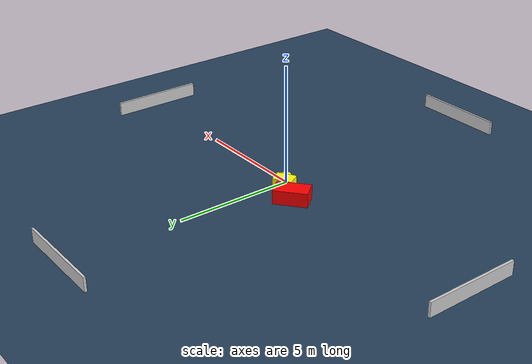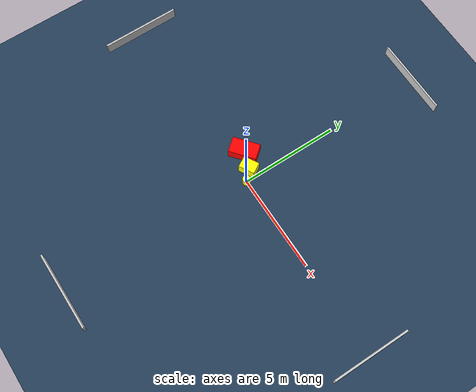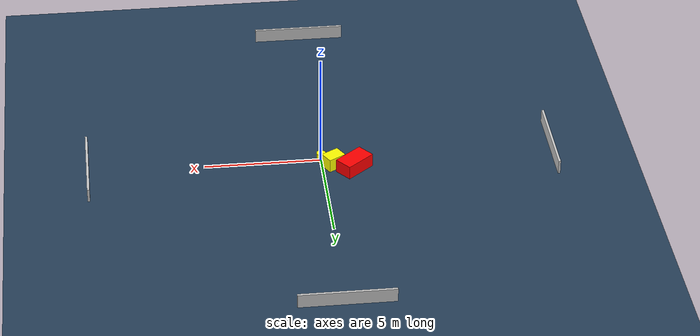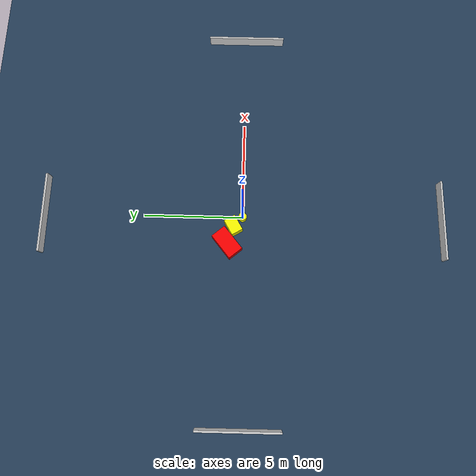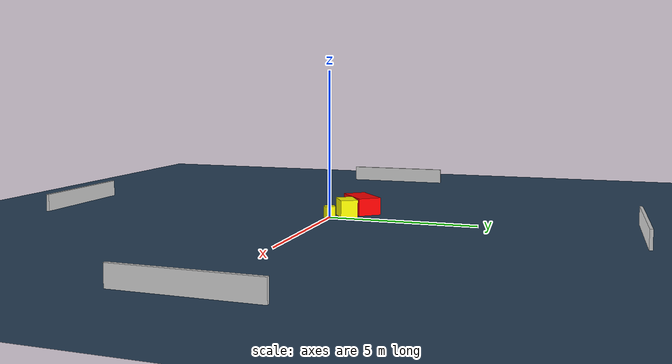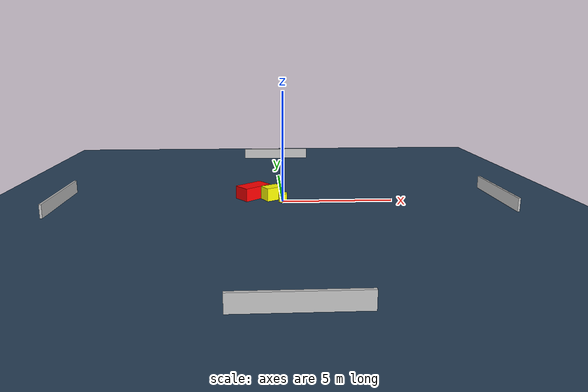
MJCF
<?xml version="1.0" ?>
<mujoco model="generated_environment">
  <option timestep="0.01" integrator="RK4" cone="elliptic"/>
  <default>
    <geom density="1"/>
  </default>
  <asset>
    <texture builtin="gradient" height="3072" name="skybox" rgb1="0.3 0.5 0.7" rgb2="0 0 0" type="skybox" width="512"/>
    <texture builtin="checker" height="300" name="groundplane" rgb1="0.2 0.3 0.4" rgb2="0.1 0.2 0.3" type="2d" width="300"/>
    <material name="groundplane" reflectance="0.2" texrepeat="5 5" texture="groundplane"/>
  </asset>
  <worldbody>
    <light dir="0 0 -1" directional="true" pos="0 0 1.5"/>
    <geom condim="3" friction="0.5 0.005 0.001" material="groundplane" name="floor" pos="0 0 0" size="0 0 0.05" type="plane"/>
    <body name="walls">
      <geom name="wall_1" condim="4" pos="-10.0 0.0 0.3" rgba="0.800000011920929 0.800000011920929 0.800000011920929 1.0" size="0.05 2.0 0.3" type="box"/>
      <geom name="wall_2" condim="4" pos="10.0 0.0 0.3" rgba="0.800000011920929 0.800000011920929 0.800000011920929 1.0" size="0.05 2.0 0.3" type="box"/>
      <geom name="wall_3" condim="4" pos="0.0 -10.0 0.3" rgba="0.800000011920929 0.800000011920929 0.800000011920929 1.0" size="2.0 0.05 0.3" type="box"/>
      <geom name="wall_4" condim="4" pos="0.0 10.0 0.3" rgba="0.800000011920929 0.800000011920929 0.800000011920929 1.0" size="2.0 0.05 0.3" type="box"/>
    </body>
    <body name="robot">
      <joint name="joint_x" type="slide" pos="0 0 0" axis="1 0 0"/>
      <joint name="joint_y" type="slide" pos="0 0 0" axis="0 1 0"/>
      <geom name="robot" type="cylinder" pos="0.0 0.0 0.2" size="0.2 0.2 0.0" mass="5.0" friction="1.0 0.005 0.0001" condim="4" rgba="1.0 1.0 0.0 1.0"/>
    </body>
    <body name="obstacle_1_movable">
      <geom name="obstacle_1_movable" condim="4" pos="-0.486880756235122 0.45935481979453857 0.3" euler="0 0 30.01767875867431" friction="0.0 0.005 0.001" rgba="1.0 1.0 0.0 1.0" size="0.40624489683063403 0.296838438123947 0.3" type="box" mass="0.1"/>
      <joint type="free"/>
    </body>
    <body name="obstacle_2_static">
      <geom name="obstacle_2_static" condim="4" pos="-1.352896733555325 0.7572145255679791 0.3" euler="0 0 129.3075178104521" friction="0.0 0.005 0.001" rgba="1.0 0.0 0.0 1.0" size="0.4001814993207584 0.7030114493301369 0.3" type="box"/>
    </body>
  </worldbody>
  <actuator>
    <motor name="actuator_x" joint="joint_x" gear="1" ctrlrange="-1 1"/>
    <motor name="actuator_y" joint="joint_y" gear="1" ctrlrange="-1 1"/>
  </actuator>
</mujoco>
